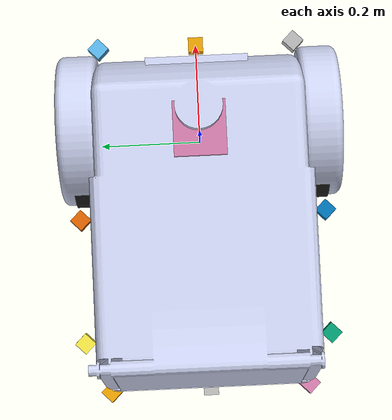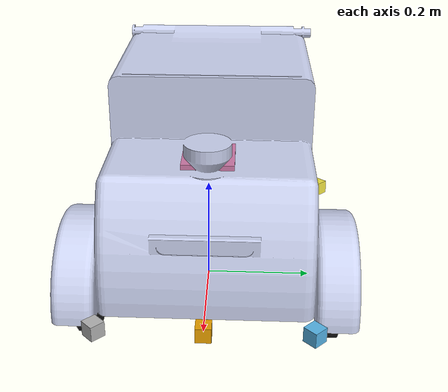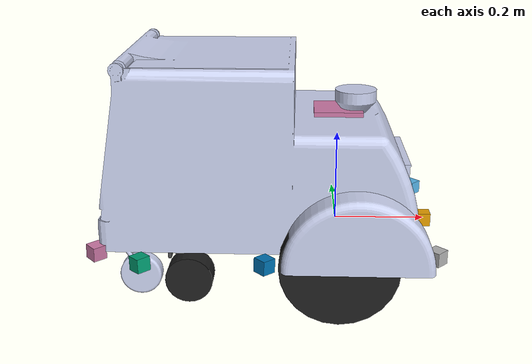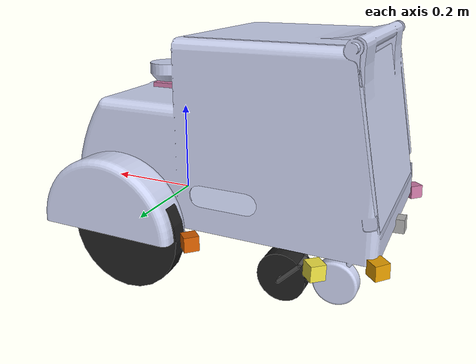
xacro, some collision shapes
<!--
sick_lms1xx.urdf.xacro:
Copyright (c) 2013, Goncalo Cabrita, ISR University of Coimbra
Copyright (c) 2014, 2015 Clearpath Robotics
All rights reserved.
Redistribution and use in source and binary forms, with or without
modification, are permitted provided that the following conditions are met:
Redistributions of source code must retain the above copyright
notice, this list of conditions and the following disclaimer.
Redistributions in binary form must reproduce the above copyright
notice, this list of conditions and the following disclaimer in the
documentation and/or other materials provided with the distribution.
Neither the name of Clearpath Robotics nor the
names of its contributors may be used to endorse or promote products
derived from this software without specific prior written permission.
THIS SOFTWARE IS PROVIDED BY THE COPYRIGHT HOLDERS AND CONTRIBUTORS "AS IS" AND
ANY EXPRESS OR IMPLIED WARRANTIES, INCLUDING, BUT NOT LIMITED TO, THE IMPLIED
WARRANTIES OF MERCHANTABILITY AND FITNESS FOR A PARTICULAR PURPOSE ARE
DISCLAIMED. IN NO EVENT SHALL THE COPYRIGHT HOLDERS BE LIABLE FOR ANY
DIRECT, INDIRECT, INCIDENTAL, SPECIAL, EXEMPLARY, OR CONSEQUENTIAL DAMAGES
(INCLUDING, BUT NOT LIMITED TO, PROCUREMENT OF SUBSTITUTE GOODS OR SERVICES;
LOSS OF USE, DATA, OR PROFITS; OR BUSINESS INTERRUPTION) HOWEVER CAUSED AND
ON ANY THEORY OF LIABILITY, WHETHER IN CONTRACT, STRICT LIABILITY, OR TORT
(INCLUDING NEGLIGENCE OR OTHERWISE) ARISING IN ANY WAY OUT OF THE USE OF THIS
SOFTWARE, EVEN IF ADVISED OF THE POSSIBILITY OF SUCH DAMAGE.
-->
<?xml version="1.0"?>
<robot name="unicorn" xmlns:xacro="http://www.ros.org/wiki/xacro">

  <!-- PROPERTY LIST -->
  <xacro:arg name="robot_namespace" default="/" />
  <!--All units in m-kg-s-radians unit system -->
  <property name="M_PI" value="3.1415926535897931" />
  <!-- Main Body-base -->
  <property name="base_x_size" value="0.72" />
  <property name="base_y_size" value="0.55" />
  <property name="base_z_size" value="0.6" />
  <property name="base_mass" value="15" /> <!-- 21.446 in kg-->
  <!--Inertial macros for the box and cylinder. Units are kg*m^2-->
  <macro name="box_inertia" params="m x y z">
    <inertia  ixx="${m*(y*y+z*z)/12}" ixy = "0" ixz = "0"
              iyy="${m*(x*x+z*z)/12}" iyz = "0"
              izz="${m*(x*x+z*z)/12}" />
  </macro>

  <!-- LMS111 -->
  <xacro:arg name="laser_xyz" default="0.0 0.0 0.260" />
  <xacro:arg name="laser_rpy" default="0.0 0.0 ${M_PI}" />
  <xacro:include filename="$(find lms1xx)/urdf/sick_lms1xx.urdf.xacro" />

  <!-- Ultrasonic sensor -->
  <xacro:arg name="ultrasonic_xyz" default="-0.3 0 0.2" />
  <xacro:arg name="ultrasonic_rpy" default="0 0 ${M_PI}" />
  <xacro:include filename="$(find unicorn_description)/urdf/ultrasonic_sensor.urdf.xacro" />

  <!-- Camera -->
  <xacro:arg name="camera_enabled" default="false" />
  <xacro:arg name="camera_xyz" default="1.0 1.0 1.0" />
  <xacro:arg name="camera_rpy" default="0.0 0.0 0.0" />
  <xacro:include filename="$(find unicorn_description)/urdf/stereo_camera.urdf.xacro" />

  <!-- Wheel -->
  <xacro:include filename="$(find am_description)/urdf/wheel.urdf.xacro" />

  <!-- Swivel wheel -->
  <xacro:include filename="$(find am_description)/urdf/swivel_wheel.urdf.xacro" />

  <!-- Materials -->
  <xacro:include filename="$(find am_description)/urdf/materials.urdf.xacro" />

  <link
    name="chassis_link">
    <inertial>
      <origin
        xyz="0.17 0 -0.10"
        rpy="0 0 0" />
      <mass
        value="${base_mass}" />
      <box_inertia  m="${5*base_mass}" x="${base_x_size}" y="${base_y_size}" z="${base_z_size}"/>
    </inertial>
    <visual>
      <origin
        xyz="-0.17 0 0"
        rpy="0 0 0" />
      <geometry>
        <mesh
          filename="package://unicorn_description/meshes/base_link.STL" />
      </geometry>
      <material
        name="">
        <color
          rgba="0.79216 0.81961 0.93333 1" />
      </material>
    </visual>
    <collision>
      <origin
        xyz="-0.17 0 0.08"
        rpy="0 0 0" />
      <geometry>
          <box size="0.65 0.5 0.2"/>
      </geometry>
    </collision>
  </link>
  <link
    name="base_link_gazebo">
    <inertial>
      <origin
        xyz="0.17 0 0"
        rpy="0 0 0" />
      <mass
        value="0.01" />
      <box_inertia  m="${5*0.01}" x="${base_x_size}" y="${base_y_size}" z="${base_z_size}"/>
    </inertial>
    <visual>
      <origin
        xyz="0 0 0"
        rpy="0 0 0" />
      <geometry>
        <box size="0.01 0.01 0.01"/>
      </geometry>
      <material
        name="">
        <color
          rgba="0.79216 0.81961 0.93333 1" />
      </material>
    </visual>
    <collision>
      <origin
        xyz="0 0 0"
        rpy="0 0 0" />
      <geometry>
          <box size="0.01 0.01 0.01"/>
      </geometry>
    </collision>
  </link>
  <gazebo reference="base_link_gazebo">
    <material>Gazebo/Green</material>
    <turnGravityOff>false</turnGravityOff>
  </gazebo>
  <joint name="base_link_gazebo_joint" type="fixed">
    <parent link="chassis_link"/>
    <child link="base_link_gazebo" />
  <origin xyz="0 0.0 0" rpy="0 0 ${M_PI}" />
  </joint>

  <wheel fb="back" lr="right" parent="base_link_gazebo" translateY="-0.24" translateX="0.0" translateZ="-0.006" wheel_radius="0.1225" wheel_height="0.032" flip="1"/>
  <wheel fb="back" lr="left" parent="base_link_gazebo" translateY="0.24" translateX="0.0" translateZ="-0.006" wheel_radius="0.1225" wheel_height="0.032" flip="1"/>

  <swivel_wheel fb="front" lr="right" parent="base_link_gazebo" translateY="-0.16" translateX="0.355" translateZ="0.03" wheel_radius="0.05" wheel_height="0.05" flip="0"/>
  <swivel_wheel fb="front" lr="left" parent="base_link_gazebo" translateY="0.16" translateX="0.355" translateZ="0.03" wheel_radius="0.05" wheel_height="0.05" flip="0"/>

  <!-- LOOP SENSORs -->

  <!-- CONFINEMENT SENSORs -->

  <!-- CUTTING DISC -->

  <!-- Antenna -->

  <sick_lms1xx frame="base_laser" topic="scan" robot_namespace="$(arg robot_namespace)"/>

  <joint name="laser_mount_joint" type="fixed">
    <origin xyz="$(arg laser_xyz)" rpy="$(arg laser_rpy)" />
    <parent link="base_link_gazebo" />
    <child link="base_laser" />
  </joint>

  <!-- Camera -->
  <xacro:if value="$(arg camera_enabled)">
    <stereo_camera frame="camera_left_link" topic="pointcloud" robot_namespace="$(arg robot_namespace)"/>
    <!-- generate an optical frame http://www.ros.org/reps/rep-0103.html#suffix-frames
        so that ros and opencv can operate on the camera frame correctly -->
    <joint name="camera_optical_joint" type="fixed">
      <!-- these values have to be these values otherwise the gazebo camera image
          won't be aligned properl  y with the frame it is supposedly originating from -->
      <origin xyz="$(arg camera_xyz)" rpy="0 0 ${-pi}"/>
      <parent link="base_link_gazebo"/>
      <child link="camera_left_link"/>
    </joint>
    <joint name="camera_depth_joint" type="fixed">
      <origin xyz="0 0 0" rpy="${-pi/2} 0 ${-pi/2}"/>
      <parent link="camera_left_link"/>
      <child link="camera_left_depth_link"/>
    </joint>
  </xacro:if>

  <!-- GPS -->
  <gazebo>
    <plugin name="novatel_gps_sim" filename="libhector_gazebo_ros_gps.so">
      <alwaysOn>1</alwaysOn>
      <updateRate>10.0</updateRate>
      <bodyName>chassis_link</bodyName>
      <topicName>gps</topicName>
      <velocityTopicName>gps_velocity</velocityTopicName>
      <drift>5.0 5.0 5.0</drift>
      <gaussianNoise>0.1 0.1 0.1</gaussianNoise>
      <velocityDrift>0 0 0</velocityDrift>
      <velocityGaussianNoise>0.1 0.1 0.1</velocityGaussianNoise>
    </plugin>
  </gazebo>

  <!-- Ultrasonic sensors -->

  <ultrasonic_sensor frame="base_ultrasonic_fr" topic="fr" robot_namespace="$(arg robot_namespace)"/>
  <joint name="ultrasonic_mount_joint_fr" type="fixed">
    <origin xyz="-0.2 0.2 0.0" rpy="0 0 ${M_PI + M_PI/4}"/>
    <parent link="base_link_gazebo"/>
    <child link="base_ultrasonic_fr" />
  </joint>

  <ultrasonic_sensor frame="base_ultrasonic_fm" topic="fm" robot_namespace="$(arg robot_namespace)"/>
  <joint name="ultrasonic_mount_joint_fm" type="fixed">
    <origin xyz="-0.2 0.0 0.0" rpy="0 0 ${M_PI}"/>
    <parent link="base_link_gazebo"/>
    <child link="base_ultrasonic_fm" />
  </joint>

  <ultrasonic_sensor frame="base_ultrasonic_fl" topic="fl" robot_namespace="$(arg robot_namespace)"/>
  <joint name="ultrasonic_mount_joint_fl" type="fixed">
    <origin xyz="-0.2 -0.2 0.0" rpy="0 0 ${M_PI - M_PI/4}"/>
    <parent link="base_link_gazebo"/>
    <child link="base_ultrasonic_fl" />
  </joint>

  <ultrasonic_sensor frame="base_ultrasonic_r" topic="r" robot_namespace="$(arg robot_namespace)"/>
  <joint name="ultrasonic_mount_joint_r" type="fixed">
    <origin xyz="0.4 0.25 0.0" rpy="0 -${M_PI/64} ${3*M_PI/4}"/>
    <parent link="base_link_gazebo"/>
    <child link="base_ultrasonic_r" />
  </joint>

  <ultrasonic_sensor frame="base_ultrasonic_l" topic="l" robot_namespace="$(arg robot_namespace)"/>
  <joint name="ultrasonic_mount_joint_l" type="fixed">
    <origin xyz="0.4 -0.25 0.0" rpy="0 -${M_PI/64} -${3*M_PI/4}"/>
    <parent link="base_link_gazebo"/>
    <child link="base_ultrasonic_l" />
  </joint>

  <ultrasonic_sensor frame="base_ultrasonic_rm" topic="rm" robot_namespace="$(arg robot_namespace)"/>
  <joint name="ultrasonic_mount_joint_rm" type="fixed">
    <origin xyz="0.15 0.25 0.0" rpy="0 -${M_PI/64} ${M_PI/4}"/>
    <parent link="base_link_gazebo"/>
    <child link="base_ultrasonic_rm" />
  </joint>

  <ultrasonic_sensor frame="base_ultrasonic_lm" topic="lm" robot_namespace="$(arg robot_namespace)"/>
  <joint name="ultrasonic_mount_joint_lm" type="fixed">
    <origin xyz="0.15 -0.25 0.0" rpy="0 -${M_PI/64} -${M_PI/4}"/>
    <parent link="base_link_gazebo"/>
    <child link="base_ultrasonic_lm"/>
  </joint>

  <ultrasonic_sensor frame="base_ultrasonic_br" topic="br" robot_namespace="$(arg robot_namespace)"/>
  <joint name="ultrasonic_mount_joint_br" type="fixed">
    <origin xyz="0.5 0.2 0.0" rpy="0 -${M_PI/64} -${M_PI/4}"/>
    <parent link="base_link_gazebo"/>
    <child link="base_ultrasonic_br" />
  </joint>

  <ultrasonic_sensor frame="base_ultrasonic_bm" topic="bm" robot_namespace="$(arg robot_namespace)"/>
  <joint name="ultrasonic_mount_joint_bm" type="fixed">
    <origin xyz="0.5 0.0 0.0" rpy="0 -${M_PI/64} 0"/>
    <parent link="base_link_gazebo"/>
    <child link="base_ultrasonic_bm" />
  </joint>

  <ultrasonic_sensor frame="base_ultrasonic_bl" topic="bl" robot_namespace="$(arg robot_namespace)"/>
  <joint name="ultrasonic_mount_joint_bl" type="fixed">
    <origin xyz="0.5 -0.2 0.0" rpy="0 -${M_PI/64} ${M_PI/4}"/>
    <parent link="base_link_gazebo"/>
    <child link="base_ultrasonic_bl" />
  </joint>

  <!-- GAZEBO STUFF -->
  <gazebo>
    <plugin name="automower_gazebo_controller" filename="libam_gazebo_controller_2wd.so">
      <alwaysOn>true</alwaysOn>
      <updateRate>100.0</updateRate>
      <leftJoint>back_right_wheel_joint</leftJoint>
      <rightJoint>back_left_wheel_joint</rightJoint>
      <wheelSeparation>0.4645</wheelSeparation>
      <wheelDiameter>0.245</wheelDiameter>
      <wheelTorque>100</wheelTorque>
      <commandTopic>cmd_vel</commandTopic>
      <odometryTopic>odom</odometryTopic>
      <odometryFrame>odom_gazebo</odometryFrame>
      <robotBaseFrame>chassis_link</robotBaseFrame>
      <publishWheelTF>false</publishWheelTF>
      <publishWheelJointState>false</publishWheelJointState>
    </plugin>

    <plugin name="gazebo_ros_control" filename="libgazebo_ros_control.so" />

    <plugin name="imu_plugin" filename="libhector_gazebo_ros_imu.so">
    <alwaysOn>false</alwaysOn>
    <bodyName>chassis_link</bodyName>
    <topicName>imu</topicName>
    <serviceName>imu_service</serviceName>
    <updateRate>100.0</updateRate>
    <rpyOffsets>0 0 0</rpyOffsets> <!-- deprecated -->

    <gaussianNoise>0.0</gaussianNoise>  <!-- deprecated -->
      <accelDrift>0.0 0.0 0.0</accelDrift>
      <accelGaussianNoise>0.0 0.0 0.0</accelGaussianNoise>
      <rateDrift>0.0 0.0 0.0</rateDrift>
      <rateGaussianNoise>0.0 0.0 0.0</rateGaussianNoise>
      <headingDrift>0.0</headingDrift>
      <headingGaussianNoise>0.00</headingGaussianNoise>
    </plugin>

    <plugin name="am_gazebo_wheelencoder" filename="libam_gazebo_wheelencoder.so">
  </plugin>

  </gazebo>

</robot>

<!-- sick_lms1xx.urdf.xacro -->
<robot xmlns:xacro="http://www.ros.org/wiki/xacro">

  <xacro:macro name="sick_lms1xx" params="frame:=laser topic:=scan sample_size:=720 update_rate:=5
               min_angle:=-2.35619 max_angle:=2.35619 min_range:=0.1 max_range:=30.0 robot_namespace:=/" >
    <link name="${frame}">
      <inertial>
        <mass value="1.1" />
        <origin xyz="0 0 0" />
        <inertia ixx="${0.0833333 * 1.1 * (0.102*0.102 + 0.152*0.152)}" ixy="0.0" ixz="0.0"
          iyy="${0.0833333 * 1.1 * (0.105*0.105 + 0.152*0.152)}" iyz="0.0"
          izz="${0.0833333 * 1.1 * (0.105*0.105 + 0.102*0.102)}" />
      </inertial>
      <visual>
        <origin xyz="0 0 0" rpy="0 0 0" />
        <geometry>
          <!-- Origin of this mesh is the focal point of the LIDAR. -->
          <mesh filename="file://$(find lms1xx)/meshes/sick-lms1xx.dae" />
        </geometry>
      </visual>
      <collision>
        <origin xyz="0 0 -0.05" rpy="0 0 0" />
        <geometry>
          <box size="0.105 0.1 0.1" />
        </geometry>
      </collision>
    </link>

    <gazebo reference="${frame}">
      <turnGravityOff>true</turnGravityOff>
      <sensor type="ray" name="${frame}">
        <pose>0 0 0 0 0 0</pose>
        <visualize>false</visualize>
        <update_rate>${update_rate}</update_rate>
        <ray>
          <scan>
            <horizontal>
              <samples>${sample_size}</samples>
              <resolution>1</resolution>
              <min_angle>${min_angle}</min_angle>
              <max_angle>${max_angle}</max_angle>
            </horizontal>
          </scan>
          <range>
            <min>${min_range}</min>
            <max>${max_range}</max>
            <resolution>0.01</resolution>
          </range>
          <noise>
            <type>gaussian</type>
            <mean>0.0</mean>
            <stddev>0.001</stddev>
          </noise>
        </ray>
        <plugin name="${frame}_scan" filename="libgazebo_ros_ray_sensor.so">
          <ros>
            <remapping>~/out:=${topic}</remapping>
            <qos>
              <topic name="${topic}">
                  <publisher>
                      <reliability>best_effort</reliability>
                  </publisher>
              </topic>
            </qos>
          </ros>
          <frame_name>${frame}</frame_name>
          <robot_namespace>${robot_namespace}</robot_namespace>
          <output_type>sensor_msgs/LaserScan</output_type>
        </plugin>
      </sensor>
    </gazebo>

  </xacro:macro>
</robot>

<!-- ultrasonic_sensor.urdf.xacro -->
<robot xmlns:xacro="http://www.ros.org/wiki/xacro">

  <xacro:macro name="ultrasonic_sensor" params="frame topic:=sonar robot_namespace:=/" >

    <link name="${frame}">
      <collision>
        <origin xyz="-0.2 0 0.2" rpy="0 0 0"/>
        <geometry>
          <box size="${0.030} ${0.030} ${0.030}"/>
        </geometry>
      </collision>

      <visual>
        <origin xyz="0 0 0" rpy="0 0 0"/>
        <geometry>
          <box size="${0.030} ${0.030} ${0.030}"/>
        </geometry>
      </visual>
      <inertial>
        <mass value="1e-5" />
        <origin xyz="0 0 0" rpy="0 0 0"/>
        <inertia ixx="1e-6" ixy="0" ixz="0" iyy="1e-6" iyz="0" izz="1e-6" />
      </inertial>
    </link>

    <!-- ultrasonic -->
    <gazebo reference="${frame}">
    <turnGravityOff>true</turnGravityOff>
        <sensor type="ray" name="sonar">
          <visualize>true</visualize>
          <update_rate>5</update_rate>
          <ray>
            <scan>
              <horizontal>
                <samples>5</samples>
                <resolution>1.0</resolution>
                <min_angle>-0.075</min_angle>
                <max_angle>0.075</max_angle>
              </horizontal>
              <vertical>
                <samples>5</samples>
                <resolution>1</resolution>
                <min_angle>-0.02</min_angle>
                <max_angle>0.02</max_angle>
              </vertical>
            </scan>
            <range>
              <min>0.02</min>
              <max>4.0</max>
              <resolution>0.01</resolution>
            </range>
          </ray>
          <plugin name="gazebo_ros_range" filename="libgazebo_ros_range.so" >
            <gaussianNoise>0.005</gaussianNoise>
            <alwaysOn>true</alwaysOn>
            <updateRate>5</updateRate>
            <topicName>ultrasonic_${topic}</topicName>
            <frameName>${frame}</frameName>
            <fov>0.5</fov>
            <radiation>ultrasound</radiation>
          </plugin>
        </sensor>
    </gazebo>
  </xacro:macro>
</robot>

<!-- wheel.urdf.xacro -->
<robot name="wheel" xmlns:xacro="http://www.ros.org/wiki/xacro">

  <!-- Wheels -->
  <xacro:property name="wheel_mass" value="0.3" /> <!-- in kg-->

  <xacro:macro name="cylinder_inertia" params="m r h">
    <inertia ixx="${m*(3*r*r+h*h)/12}" ixy="0" ixz="0"
             iyy="${m*(3*r*r+h*h)/12}" iyz="0"
             izz="${m*r*r/2}" />
  </xacro:macro>

  <xacro:macro name="wheel"
               params="fb lr parent translateX translateY translateZ wheel_radius wheel_height flip"> <!--fb : front, back ; lr: left, right -->
    <link name="${fb}_${lr}_wheel">
      <visual>
        <origin xyz="0 0 0" rpy="${flip*M_PI/2} 0 0" />
        <geometry>
          <cylinder length="${wheel_height}" radius="${wheel_radius}" />
        </geometry>
        <material name="Black" />
      </visual>
      <surface>
        <friction>
          <ode>
            <mu>0.8</mu>
            <mu2>0.8</mu2>
          </ode>
        </friction>
      </surface>
      <collision>
        <origin xyz="0 0 0" rpy="${flip*M_PI/2} 0 0" />
        <geometry>
          <cylinder length="${wheel_height}" radius="${wheel_radius}" />
        </geometry>
      </collision>
      <inertial>
        <mass value="${wheel_mass}" />
        <origin xyz="0 0 0" />
        <cylinder_inertia m="${wheel_mass}" r="${wheel_radius}" h="${wheel_height}" />
      </inertial>
    </link>

    <gazebo reference="${fb}_${lr}_wheel">
      <mu1 value="10000.0" />
      <mu2 value="10000.0" />
      <kp value="10e4" />
      <kd value="10e2" />
      <dampingFactor value="0.9" />
      <fdir1 value="1 0 0" />
      <material>Gazebo/Black</material>
      <turnGravityOff>false</turnGravityOff>
    </gazebo>

    <joint name="${fb}_${lr}_wheel_joint" type="continuous">
      <parent link="${parent}" />
      <child link="${fb}_${lr}_wheel" />
      <origin xyz="${translateX} ${translateY} ${translateZ}" rpy="0 0 0" />
      <axis xyz="0 1 0" rpy="0 0 0" />
      <limit effort="1000" velocity="100" />
      <joint_properties damping="0.5" friction="0.1" />
    </joint>

    <!-- Transmission is important to link the joints and the controller -->
    <transmission name="${fb}_${lr}_wheel_joint_trans">
      <type>transmission_interface/SimpleTransmission</type>
      <joint name="${fb}_${lr}_wheel_joint">
        <hardwareInterface>hardware_interface/EffortJointInterface</hardwareInterface>
      </joint>
      <actuator name="${fb}_${lr}_wheel_joint_motor">
        <hardwareInterface>hardware_interface/EffortJointInterface</hardwareInterface>
        <mechanicalReduction>1</mechanicalReduction>
      </actuator>
    </transmission>

  </xacro:macro>
</robot>

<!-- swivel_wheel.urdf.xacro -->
<robot name="swivel_wheel" xmlns:xacro="http://www.ros.org/wiki/xacro">

  <!-- Wheels -->
  <xacro:property name="wheel_mass" value="0.5" /> <!-- in kg-->

  <xacro:macro name="cylinder_inertia" params="m r h">
    <inertia ixx="${m*(3*r*r+h*h)/12}" ixy="0" ixz="0"
             iyy="${m*(3*r*r+h*h)/12}" iyz="0"
             izz="${m*r*r/2}" />
  </xacro:macro>

  <xacro:macro name="swivel_arm" params="lr index l offset">
    <link name="sw_arm_${lr}_${index}">

      <inertial>
        <mass value="0.01" />
        <origin xyz="0 0 0" />
        <cylinder_inertia m="0.01" r="0.004" h="${l}" />
      </inertial>

      <visual>
        <geometry>
          <cylinder radius="0.004" length="${l}" />
        </geometry>
        <material name="silver">
          <color rgba="0.3 0.3 0.3 1" />
        </material>
        <origin rpy="0 0 0" xyz="${offset}" />
      </visual>
    </link>
  </xacro:macro>

  <xacro:macro name="swivel_wheel"
               params="fb lr parent translateX translateY translateZ wheel_radius wheel_height flip"> <!--fb : front, back ; lr: left, right -->

    <!-- First link connected to parent-->
    <swivel_arm lr="${lr}" index="1" l="0.06" offset="0 0 -0.03" />

    <joint name="sw_arm_${lr}_connect_1" type="continuous">
      <origin xyz="${translateX} ${translateY} ${translateZ}" rpy="0 0 0" />
      <axis xyz="0 0 1" rpy="0 0 0" />
      <parent link="${parent}" />
      <child link="sw_arm_${lr}_1" />
      <limit effort="100" velocity="100" />
      <joint_properties damping="0.1" friction="0.1" />
    </joint>

    <!-- Second link connected to first-->
    <swivel_arm lr="${lr}" index="2" l="0.04" offset="0 0 0.02" />

    <joint name="sw_arm_${lr}_connect_2" type="fixed">
      <origin rpy="1.5707 0 0" xyz="0 0 -0.06" />
      <parent link="sw_arm_${lr}_1" />
      <child link="sw_arm_${lr}_2" />
    </joint>

    <!-- Third link connected to second-->
    <swivel_arm lr="${lr}" index="3" l="0.06" offset="0 0 -0.03" />

    <joint name="sw_arm_${lr}_connect_3" type="fixed">
      <origin rpy="-1.5707 0 -0.78" xyz="0 0 0.04" />
      <parent link="sw_arm_${lr}_2" />
      <child link="sw_arm_${lr}_3" />
    </joint>

    <!-- Fourth link connected to third-->
    <swivel_arm lr="${lr}" index="4" l="0.04" offset="0 0 -0.02" />

    <joint name="sw_arm_${lr}_connect_4" type="fixed">
      <origin rpy="1.5707 0 0" xyz="0 0 -0.060" />
      <parent link="sw_arm_${lr}_3" />
      <child link="sw_arm_${lr}_4" />
    </joint>

    <!-- Wheel connected to fourth-->
    <link name="${fb}_${lr}_swivel_wheel">
      <visual>
        <origin xyz="0 0 0" rpy="${flip*M_PI/2} 0 0" />
        <geometry>
          <cylinder length="${wheel_height}" radius="${wheel_radius}" />
        </geometry>
        <material name="Black" />
      </visual>
      <collision>
        <origin xyz="0 0 0" rpy="0 0 0" />
        <geometry>
          <cylinder length="${wheel_height}" radius="${wheel_radius}" />
        </geometry>
        <surface>
          <friction>
            <ode>
              <mu>0.8</mu>
              <mu2>0.8</mu2>
            </ode>
          </friction>
        </surface>
      </collision>
      <inertial>
        <mass value="${wheel_mass}" />
        <origin xyz="0 0 0" />
        <cylinder_inertia m="${wheel_mass}" r="${wheel_radius}" h="${wheel_height}" />
      </inertial>
    </link>

    <gazebo reference="${fb}_${lr}_swivel_wheel">
      <mu1 value="100" />
      <mu2 value="100" />
      <kp value="10e2" />
      <kd value="10e2" />
      <dampingFactor value="0.9" />
      <fdir1 value="1 1 1" />
      <material>Gazebo/Black</material>
      <turnGravityOff>false</turnGravityOff>
    </gazebo>

    <joint name="${fb}_${lr}_swivel_wheel_joint" type="continuous">
      <parent link="sw_arm_${lr}_4" />
      <child link="${fb}_${lr}_swivel_wheel" />
      <origin rpy="0 0 0" xyz="0 0 -0.04" />
      <axis xyz="0 0 1" rpy="0 0 0" />
      <limit effort="100" velocity="100" />
      <joint_properties damping="1" friction="1" />
    </joint>

    <!-- Transmission is important to link the joints and the controller -->

  </xacro:macro>
</robot>
